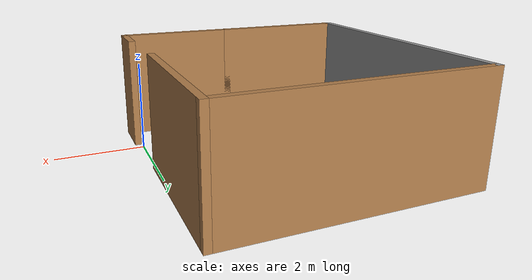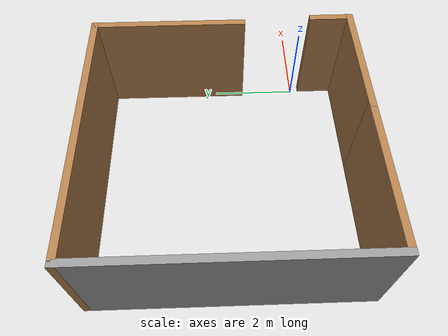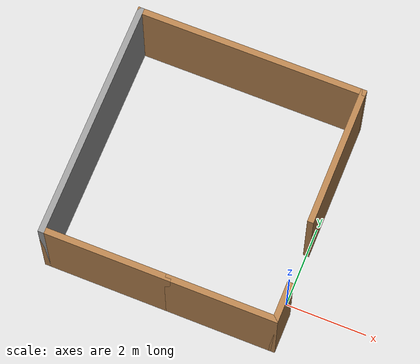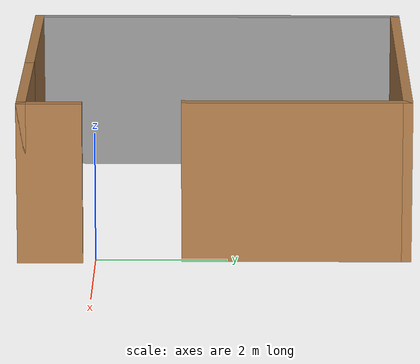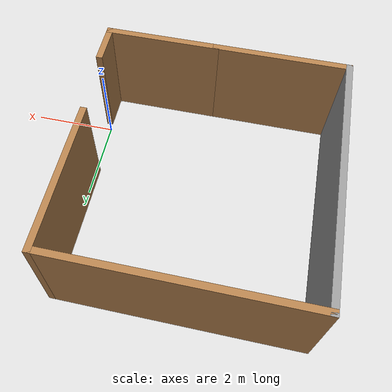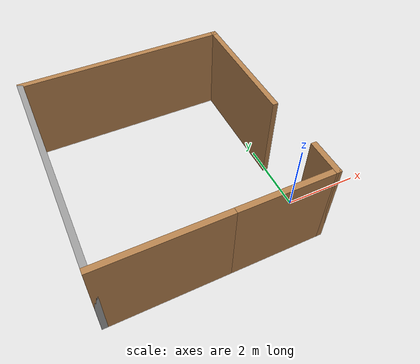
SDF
<sdf version="1.6">
 <world name="__default__">
  <gravity>0 0 -9.8</gravity>
  <magnetic_field>6e-06 2.3e-05 -4.2e-05</magnetic_field>
  <atmosphere type="adiabatic"/>
  <physics name="default_physics" default="0" type="ode">
   <max_step_size>0.001</max_step_size>
   <real_time_factor>1</real_time_factor>
   <real_time_update_rate>1000</real_time_update_rate>
  </physics>
  <scene><ambient>0.4 0.4 0.4 1</ambient><background>0.7 0.7 0.7 1</background><shadows>1</shadows></scene>
  <spherical_coordinates>
   <surface_model>EARTH_WGS84</surface_model>
   <latitude_deg>0</latitude_deg>
   <longitude_deg>0</longitude_deg>
   <elevation>0</elevation>
   <heading_deg>0</heading_deg>
  </spherical_coordinates>
  <model name="kkk">
   <pose>-2.76161 1.807 0 0 -0 0</pose>
   <link name="Wall_2">
    <collision name="Wall_2_Collision">
     <geometry><box><size>3.5 0.15 2.5</size></box></geometry>
     <pose>0 0 1.25 0 -0 0</pose>
    </collision>
    <visual name="Wall_2_Visual">
     <pose>0 0 1.25 0 -0 0</pose>
     <geometry><box><size>3.5 0.15 2.5</size></box></geometry>
     <material>
      <script><uri>file://media/materials/scripts/gazebo.material</uri><name>Gazebo/Wood</name></script>
      <ambient>1 1 1 1</ambient>
     </material>
     <meta><layer>0</layer></meta>
    </visual>
    <pose>2.75 1.25 0 0 -0 1.5708</pose>
   </link>
   <link name="Wall_3">
    <collision name="Wall_3_Collision">
     <geometry><box><size>5.75 0.15 2.5</size></box></geometry>
     <pose>0 0 1.25 0 -0 0</pose>
    </collision>
    <visual name="Wall_3_Visual">
     <pose>0 0 1.25 0 -0 0</pose>
     <geometry><box><size>5.75 0.15 2.5</size></box></geometry>
     <material>
      <script><uri>file://media/materials/scripts/gazebo.material</uri><name>Gazebo/Wood</name></script>
      <ambient>1 1 1 1</ambient>
     </material>
     <meta><layer>0</layer></meta>
    </visual>
    <pose>-0.05 2.925 0 0 -0 3.14159</pose>
   </link>
   <link name="Wall_4">
    <collision name="Wall_4_Collision">
     <geometry><box><size>6 0.15 2.5</size></box></geometry>
     <pose>0 0 1.25 0 -0 0</pose>
    </collision>
    <visual name="Wall_4_Visual">
     <pose>0 0 1.25 0 -0 0</pose>
     <geometry><box><size>6 0.15 2.5</size></box></geometry>
     <material>
      <script><uri>file://media/materials/scripts/gazebo.material</uri><name>Gazebo/Grey</name></script>
      <ambient>1 1 1 1</ambient>
     </material>
     <meta><layer>0</layer></meta>
    </visual>
    <pose>-2.85 0 0 0 0 -1.5708</pose>
   </link>
   <link name="Wall_5">
    <collision name="Wall_5_Collision">
     <geometry><box><size>3.25 0.15 2.5</size></box></geometry>
     <pose>0 0 1.25 0 -0 0</pose>
    </collision>
    <visual name="Wall_5_Visual">
     <pose>0 0 1.25 0 -0 0</pose>
     <geometry><box><size>3.25 0.15 2.5</size></box></geometry>
     <material>
      <script><uri>file://media/materials/scripts/gazebo.material</uri><name>Gazebo/Wood</name></script>
      <ambient>1 1 1 1</ambient>
     </material>
     <meta><layer>0</layer></meta>
    </visual>
    <pose>-1.3 -2.925 0 0 -0 0</pose>
   </link>
   <link name="Wall_7">
    <collision name="Wall_7_Collision">
     <geometry><box><size>2.75 0.15 2.5</size></box></geometry>
     <pose>0 0 1.25 0 -0 0</pose>
    </collision>
    <visual name="Wall_7_Visual">
     <pose>0 0 1.25 0 -0 0</pose>
     <geometry><box><size>2.75 0.15 2.5</size></box></geometry>
     <material>
      <script><uri>file://media/materials/scripts/gazebo.material</uri><name>Gazebo/Wood</name></script>
      <ambient>1 1 1 1</ambient>
     </material>
     <meta><layer>0</layer></meta>
    </visual>
    <pose>1.55 -2.925 0 0 -0 0</pose>
   </link>
   <link name="Wall_8">
    <collision name="Wall_8_Collision">
     <geometry><box><size>1 0.15 2.5</size></box></geometry>
     <pose>0 0 1.25 0 -0 0</pose>
    </collision>
    <visual name="Wall_8_Visual">
     <pose>0 0 1.25 0 -0 0</pose>
     <geometry><box><size>1 0.15 2.5</size></box></geometry>
     <material>
      <script><uri>file://media/materials/scripts/gazebo.material</uri><name>Gazebo/Wood</name></script>
      <ambient>1 1 1 1</ambient>
     </material>
     <meta><layer>0</layer></meta>
    </visual>
    <pose>2.85 -2.5 0 0 -0 1.5708</pose>
   </link>
   <static>1</static>
  </model>
 </world>
</sdf>
